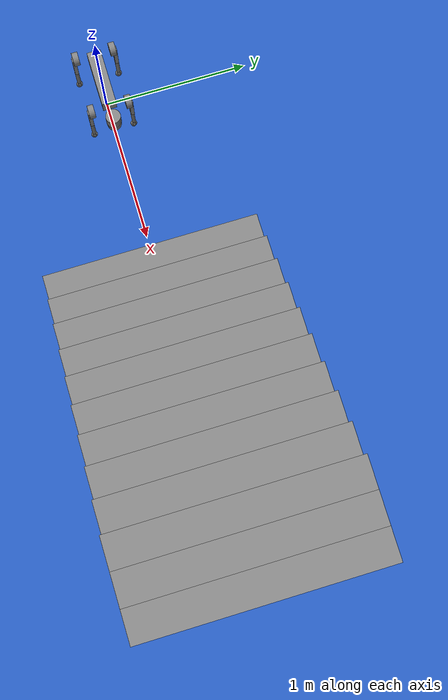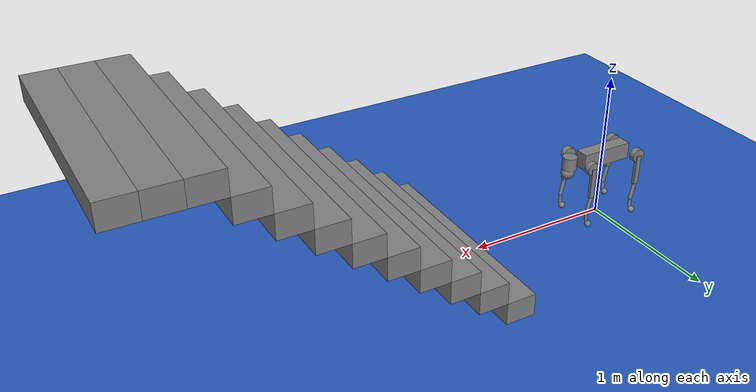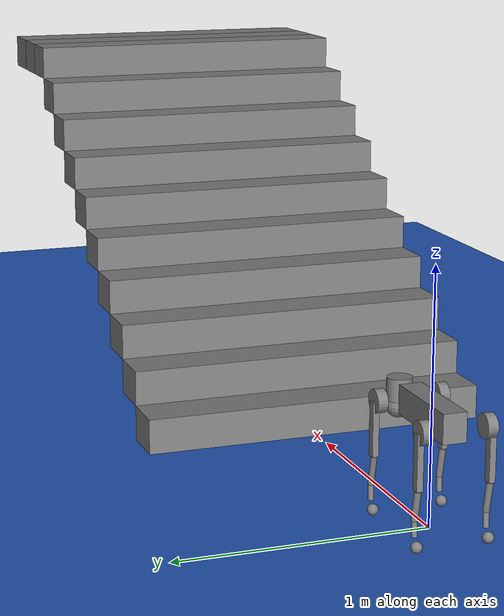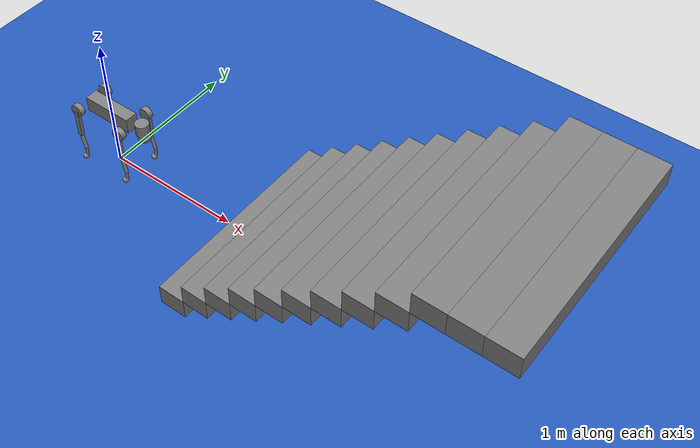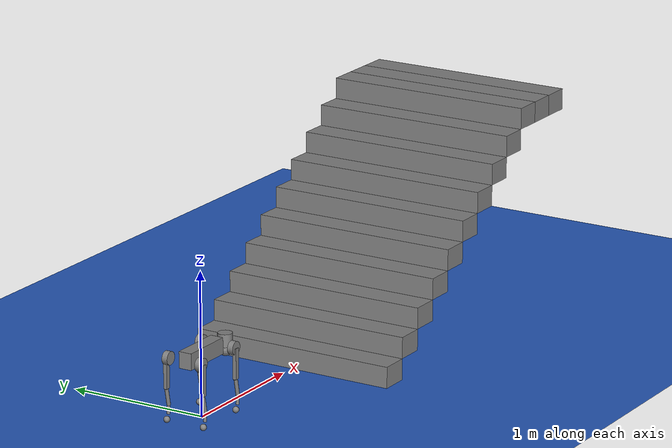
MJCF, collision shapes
<mujoco model="Go2 stairs scene">
  <include file="../common.xml"/>

  <size memory="1M"/>
  <statistic center="1.7 0 0.8" extent="2.5"/>

  <visual>
    <headlight diffuse="0.6 0.6 0.6" ambient="0.3 0.3 0.3" specular="0 0 0"/>
    <global azimuth="-90" elevation="-20" offheight="1024" offwidth="1024"/>
  </visual>

  <worldbody>
    <light pos="0 0 2" dir="0 0 -1" directional="true" castshadow="false"/>
    <geom name="floor" type="plane" size="0 0 0.1" pos="0 0 -0.01"
          material="blue_grid" friction="0.8 0.005 0.0001"/>
    <geom name="step_01" pos="1.2 0 0.075" type="box" size="0.1 0.75 0.075"/>
    <geom name="step_02" pos="1.4 0 0.225" type="box" size="0.1 0.75 0.075"/>
    <geom name="step_03" pos="1.6 0 0.375" type="box" size="0.1 0.75 0.075"/>
    <geom name="step_04" pos="1.8 0 0.525" type="box" size="0.1 0.75 0.075"/>
    <geom name="step_05" pos="2.0 0 0.675" type="box" size="0.1 0.75 0.075"/>
    <geom name="step_06" pos="2.2 0 0.825" type="box" size="0.1 0.75 0.075"/>
    <geom name="step_07" pos="2.4 0 0.975" type="box" size="0.1 0.75 0.075"/>
    <geom name="step_08" pos="2.6 0 1.125" type="box" size="0.1 0.75 0.075"/>
    <geom name="step_09" pos="2.8 0 1.275" type="box" size="0.1 0.75 0.075"/>
    <geom name="step_10" pos="3.0 0 1.425" type="box" size="0.1 0.75 0.075"/>
    <geom name="landing_1" pos="3.2 0 1.425" type="box" size="0.1 0.75 0.075"/>
    <geom name="landing_2" pos="3.4 0 1.425" type="box" size="0.1 0.75 0.075"/>
  </worldbody>

  <include file="go2.xml"/>

  <keyframe>
    <key name="home"
         qpos="0 0 0.27 1 0 0 0
               0 0.9 -1.8  0 0.9 -1.8
               0 0.9 -1.8  0 0.9 -1.8"
         ctrl="0 0.9 -1.8  0 0.9 -1.8
               0 0.9 -1.8  0 0.9 -1.8"/>
    <key name="sit"
         qpos="0 0 0.08 1 0 0 0
               0.073 1.34 -2.83  0.073 1.34 -2.83
               0.073 1.34 -2.83  0.073 1.34 -2.83"
         ctrl="0.073 1.34 -2.83  0.073 1.34 -2.83
               0.073 1.34 -2.83  0.073 1.34 -2.83"/>
  </keyframe>
</mujoco>

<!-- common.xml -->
<mujoco>
  <visual>
    <headlight ambient=".4 .4 .4" diffuse=".8 .8 .8" specular=".1 .1 .1"/>
    <map znear=".01"/>
    <quality shadowsize="2048"/>
    <global elevation="-15"/>
  </visual>
  <asset>
    <texture name="blue_grid" type="2d" builtin="checker"
      rgb1=".02 .14 .44" rgb2=".27 .55 1" width="300" height="300"
      mark="edge" markrgb="1 1 1"/>
    <material name="blue_grid" texture="blue_grid" texrepeat="1 1"
      texuniform="true" reflectance=".2"/>
    <texture name="grey_grid" type="2d" builtin="checker"
      rgb1=".26 .26 .26" rgb2=".6 .6 .6" width="300" height="300"
      mark="edge" markrgb="1 1 1"/>
    <material name="grey_grid" texture="grey_grid" texrepeat="1 1"
      texuniform="true" reflectance=".2"/>
    <texture name="skybox" type="skybox" builtin="gradient"
      rgb1=".66 .79 1" rgb2=".9 .91 .93" width="800" height="800"/>
  </asset>
</mujoco>

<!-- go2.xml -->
<mujoco model="go2">
  <compiler angle="radian" meshdir="assets" autolimits="true" />

  <option timestep="0.01" integrator="Euler" cone="elliptic" impratio="100" />

  <default>
    <default class="go2">
      <geom friction="0.6" margin="0.001" condim="1"/>
      <joint axis="0 1 0" damping="2" armature="0.01" frictionloss="0.2"/>
      <!-- MPPI commands joint positions.  Model the Unitree low-level PD loop
           so ctrl has the same meaning in rollout and in the simulator. -->
      <general forcerange="-23.7 23.7" biastype="affine"
        gainprm="50 0 0 0 0 0 0 0 0 0"
        biasprm="0 -50 -3 0 0 0 0 0 0 0"/>
      <default class="abduction">
        <joint axis="1 0 0" damping="1" range="-1.0472 1.0472"/>
        <general ctrlrange="-1.0472 1.0472"/>
      </default>
      <default class="hip">
        <default class="front_hip">
          <joint range="-1.5708 3.4907"/>
          <general ctrlrange="-1.5708 3.4907"/>
        </default>
        <default class="back_hip">
          <joint range="-0.5236 4.5379"/>
          <general ctrlrange="-0.5236 4.5379"/>
        </default>
      </default>
      <default class="knee">
        <!-- The bundled legacy gait bank reaches -2.83 rad while sitting. -->
        <joint range="-2.83 -0.83776"/>
        <general ctrlrange="-2.83 -0.83776" forcerange="-45.43 45.43"/>
      </default>
      <default class="visual">
        <geom type="mesh" contype="0" conaffinity="0" group="2"/>
      </default>
      <default class="collision">
        <geom group="3"/>
        <default class="foot">
          <geom size="0.022" pos="-0.002 0 -0.213" priority="1" condim="6"
            friction="0.8 0.02 0.01"/>
        </default>
      </default>
    </default>
  </default>

  <asset>
    <material name="metal" rgba=".9 .95 .95 1" />
    <material name="black" rgba="0 0 0 1" />
    <material name="white" rgba="1 1 1 1" />
    <material name="gray" rgba="0.671705 0.692426 0.774270 1" />

    <mesh file="base_0.obj" />
    <mesh file="base_1.obj" />
    <mesh file="base_2.obj" />
    <mesh file="base_3.obj" />
    <mesh file="base_4.obj" />
    <mesh file="hip_0.obj" />
    <mesh file="hip_1.obj" />
    <mesh file="thigh_0.obj" />
    <mesh file="thigh_1.obj" />
    <mesh file="thigh_mirror_0.obj" />
    <mesh file="thigh_mirror_1.obj" />
    <mesh file="calf_0.obj" />
    <mesh file="calf_1.obj" />
    <mesh file="calf_mirror_0.obj" />
    <mesh file="calf_mirror_1.obj" />
    <mesh file="foot.obj" />
  </asset>

  <worldbody>
    <body name="base_link" pos="0 0 0.445" childclass="go2">
      <inertial pos="0.021112 0 -0.005366" quat="-0.000543471 0.713435 -0.00173769 0.700719"
        mass="6.921"
        diaginertia="0.107027 0.0980771 0.0244531" />
      <freejoint />
      <geom mesh="base_0" material="black" class="visual" />
      <geom mesh="base_1" material="black" class="visual" />
      <geom mesh="base_2" material="black" class="visual" />
      <geom mesh="base_3" material="white" class="visual" />
      <geom mesh="base_4" material="gray" class="visual" />
      <geom size="0.1881 0.04675 0.057" type="box" class="collision" />
      <geom size="0.05 0.045" pos="0.285 0 0.01" type="cylinder" class="collision" />
      <geom size="0.047" pos="0.293 0 -0.06" class="collision" />
      <site name="imu" pos="-0.02557 0 0.04232" />
      <body name="FL_hip" pos="0.1934 0.0465 0">
        <inertial pos="-0.0054 0.00194 -0.000105" quat="0.497014 0.499245 0.505462 0.498237"
          mass="0.678"
          diaginertia="0.00088403 0.000596003 0.000479967" />
        <joint name="FL_hip_joint" class="abduction" />
        <geom mesh="hip_0" material="metal" class="visual" />
        <geom mesh="hip_1" material="gray" class="visual" />
        <geom size="0.046 0.02" pos="0 0.08 0" quat="1 1 0 0" type="cylinder" class="collision" />
        <body name="FL_thigh" pos="0 0.0955 0">
          <inertial pos="-0.00374 -0.0223 -0.0327" quat="0.829533 0.0847635 -0.0200632 0.551623"
            mass="1.152"
            diaginertia="0.00594973 0.00584149 0.000878787" />
          <joint name="FL_thigh_joint" class="front_hip" />
          <geom mesh="thigh_0" material="metal" class="visual" />
          <geom mesh="thigh_1" material="gray" class="visual" />
          <geom size="0.1065 0.01225 0.017" pos="0 0 -0.1065" quat="0.707107 0 0.707107 0"
            type="box" class="collision" />
          <body name="FL_calf" pos="0 0 -0.213">
            <inertial pos="0.00629595 -0.000622121 -0.141417"
              quat="0.710672 0.00154099 -0.00450087 0.703508"
              mass="0.241352" diaginertia="0.0014901 0.00146356 5.31397e-05" />
            <joint name="FL_calf_joint" class="knee" />
            <geom mesh="calf_0" material="gray" class="visual" />
            <geom mesh="calf_1" material="black" class="visual" />
            <geom size="0.012 0.06" pos="0.008 0 -0.06" quat="0.994493 0 -0.104807 0"
              type="cylinder" class="collision" />
            <geom size="0.011 0.0325" pos="0.02 0 -0.148" quat="0.999688 0 0.0249974 0"
              type="cylinder" class="collision" />
            <geom pos="0 0 -0.213" mesh="foot" class="visual" material="black" />
            <geom name="FL" class="foot" />
            <body name="FL_foot" pos="0 0 -0.213" />
          </body>
        </body>
      </body>
      <body name="FR_hip" pos="0.1934 -0.0465 0">
        <inertial pos="-0.0054 -0.00194 -0.000105" quat="0.498237 0.505462 0.499245 0.497014"
          mass="0.678"
          diaginertia="0.00088403 0.000596003 0.000479967" />
        <joint name="FR_hip_joint" class="abduction" />
        <geom mesh="hip_0" material="metal" class="visual" quat="4.63268e-05 1 0 0" />
        <geom mesh="hip_1" material="gray" class="visual" quat="4.63268e-05 1 0 0" />
        <geom size="0.046 0.02" pos="0 -0.08 0" quat="0.707107 0.707107 0 0" type="cylinder"
          class="collision" />
        <body name="FR_thigh" pos="0 -0.0955 0">
          <inertial pos="-0.00374 0.0223 -0.0327" quat="0.551623 -0.0200632 0.0847635 0.829533"
            mass="1.152"
            diaginertia="0.00594973 0.00584149 0.000878787" />
          <joint name="FR_thigh_joint" class="front_hip" />
          <geom mesh="thigh_mirror_0" material="metal" class="visual" />
          <geom mesh="thigh_mirror_1" material="gray" class="visual" />
          <geom size="0.1065 0.01225 0.017" pos="0 0 -0.1065" quat="0.707107 0 0.707107 0"
            type="box" class="collision" />
          <body name="FR_calf" pos="0 0 -0.213">
            <inertial pos="0.00629595 0.000622121 -0.141417"
              quat="0.703508 -0.00450087 0.00154099 0.710672"
              mass="0.241352" diaginertia="0.0014901 0.00146356 5.31397e-05" />
            <joint name="FR_calf_joint" class="knee" />
            <geom mesh="calf_mirror_0" material="gray" class="visual" />
            <geom mesh="calf_mirror_1" material="black" class="visual" />
            <geom size="0.013 0.06" pos="0.01 0 -0.06" quat="0.995004 0 -0.0998334 0"
              type="cylinder" class="collision" />
            <geom size="0.011 0.0325" pos="0.02 0 -0.148" quat="0.999688 0 0.0249974 0"
              type="cylinder" class="collision" />
            <geom pos="0 0 -0.213" mesh="foot" class="visual" material="black" />
            <geom name="FR" class="foot" />
            <body name="FR_foot" pos="0 0 -0.213" />
          </body>
        </body>
      </body>
      <body name="RL_hip" pos="-0.1934 0.0465 0">
        <inertial pos="0.0054 0.00194 -0.000105" quat="0.505462 0.498237 0.497014 0.499245"
          mass="0.678"
          diaginertia="0.00088403 0.000596003 0.000479967" />
        <joint name="RL_hip_joint" class="abduction" />
        <geom mesh="hip_0" material="metal" class="visual" quat="4.63268e-05 0 1 0" />
        <geom mesh="hip_1" material="gray" class="visual" quat="4.63268e-05 0 1 0" />
        <geom size="0.046 0.02" pos="0 0.08 0" quat="0.707107 0.707107 0 0" type="cylinder"
          class="collision" />
        <body name="RL_thigh" pos="0 0.0955 0">
          <inertial pos="-0.00374 -0.0223 -0.0327" quat="0.829533 0.0847635 -0.0200632 0.551623"
            mass="1.152"
            diaginertia="0.00594973 0.00584149 0.000878787" />
          <joint name="RL_thigh_joint" class="back_hip" />
          <geom mesh="thigh_0" material="metal" class="visual" />
          <geom mesh="thigh_1" material="gray" class="visual" />
          <geom size="0.1065 0.01225 0.017" pos="0 0 -0.1065" quat="0.707107 0 0.707107 0"
            type="box" class="collision" />
          <body name="RL_calf" pos="0 0 -0.213">
            <inertial pos="0.00629595 -0.000622121 -0.141417"
              quat="0.710672 0.00154099 -0.00450087 0.703508"
              mass="0.241352" diaginertia="0.0014901 0.00146356 5.31397e-05" />
            <joint name="RL_calf_joint" class="knee" />
            <geom mesh="calf_0" material="gray" class="visual" />
            <geom mesh="calf_1" material="black" class="visual" />
            <geom size="0.013 0.06" pos="0.01 0 -0.06" quat="0.995004 0 -0.0998334 0"
              type="cylinder" class="collision" />
            <geom size="0.011 0.0325" pos="0.02 0 -0.148" quat="0.999688 0 0.0249974 0"
              type="cylinder" class="collision" />
            <geom pos="0 0 -0.213" mesh="foot" class="visual" material="black" />
            <geom name="RL" class="foot" />
            <body name="RL_foot" pos="0 0 -0.213" />
          </body>
        </body>
      </body>
      <body name="RR_hip" pos="-0.1934 -0.0465 0">
        <inertial pos="0.0054 -0.00194 -0.000105" quat="0.499245 0.497014 0.498237 0.505462"
          mass="0.678"
          diaginertia="0.00088403 0.000596003 0.000479967" />
        <joint name="RR_hip_joint" class="abduction" />
        <geom mesh="hip_0" material="metal" class="visual"
          quat="2.14617e-09 4.63268e-05 4.63268e-05 -1" />
        <geom mesh="hip_1" material="gray" class="visual"
          quat="2.14617e-09 4.63268e-05 4.63268e-05 -1" />
        <geom size="0.046 0.02" pos="0 -0.08 0" quat="0.707107 0.707107 0 0" type="cylinder"
          class="collision" />
        <body name="RR_thigh" pos="0 -0.0955 0">
          <inertial pos="-0.00374 0.0223 -0.0327" quat="0.551623 -0.0200632 0.0847635 0.829533"
            mass="1.152"
            diaginertia="0.00594973 0.00584149 0.000878787" />
          <joint name="RR_thigh_joint" class="back_hip" />
          <geom mesh="thigh_mirror_0" material="metal" class="visual" />
          <geom mesh="thigh_mirror_1" material="gray" class="visual" />
          <geom size="0.1065 0.01225 0.017" pos="0 0 -0.1065" quat="0.707107 0 0.707107 0"
            type="box" class="collision" />
          <body name="RR_calf" pos="0 0 -0.213">
            <inertial pos="0.00629595 0.000622121 -0.141417"
              quat="0.703508 -0.00450087 0.00154099 0.710672"
              mass="0.241352" diaginertia="0.0014901 0.00146356 5.31397e-05" />
            <joint name="RR_calf_joint" class="knee" />
            <geom mesh="calf_mirror_0" material="gray" class="visual" />
            <geom mesh="calf_mirror_1" material="black" class="visual" />
            <geom size="0.013 0.06" pos="0.01 0 -0.06" quat="0.995004 0 -0.0998334 0"
              type="cylinder" class="collision" />
            <geom size="0.011 0.0325" pos="0.02 0 -0.148" quat="0.999688 0 0.0249974 0"
              type="cylinder" class="collision" />
            <geom pos="0 0 -0.213" mesh="foot" class="visual" material="black" />
            <geom name="RR" class="foot" />
            <body name="RR_foot" pos="0 0 -0.213" />
          </body>
        </body>
      </body>
    </body>
  </worldbody>

  <actuator>
    <general class="abduction" name="FR_hip" joint="FR_hip_joint" />
    <general class="front_hip" name="FR_thigh" joint="FR_thigh_joint" />
    <general class="knee" name="FR_calf" joint="FR_calf_joint" />
    <general class="abduction" name="FL_hip" joint="FL_hip_joint" />
    <general class="front_hip" name="FL_thigh" joint="FL_thigh_joint" />
    <general class="knee" name="FL_calf" joint="FL_calf_joint" />
    <general class="abduction" name="RR_hip" joint="RR_hip_joint" />
    <general class="back_hip" name="RR_thigh" joint="RR_thigh_joint" />
    <general class="knee" name="RR_calf" joint="RR_calf_joint" />
    <general class="abduction" name="RL_hip" joint="RL_hip_joint" />
    <general class="back_hip" name="RL_thigh" joint="RL_thigh_joint" />
    <general class="knee" name="RL_calf" joint="RL_calf_joint" />
  </actuator>

  <sensor>
    <jointpos name="FR_hip_pos" joint="FR_hip_joint" />
    <jointpos name="FR_thigh_pos" joint="FR_thigh_joint" />
    <jointpos name="FR_calf_pos" joint="FR_calf_joint" />
    <jointpos name="FL_hip_pos" joint="FL_hip_joint" />
    <jointpos name="FL_thigh_pos" joint="FL_thigh_joint" />
    <jointpos name="FL_calf_pos" joint="FL_calf_joint" />
    <jointpos name="RR_hip_pos" joint="RR_hip_joint" />
    <jointpos name="RR_thigh_pos" joint="RR_thigh_joint" />
    <jointpos name="RR_calf_pos" joint="RR_calf_joint" />
    <jointpos name="RL_hip_pos" joint="RL_hip_joint" />
    <jointpos name="RL_thigh_pos" joint="RL_thigh_joint" />
    <jointpos name="RL_calf_pos" joint="RL_calf_joint" />

    <jointvel name="FR_hip_vel" joint="FR_hip_joint" />
    <jointvel name="FR_thigh_vel" joint="FR_thigh_joint" />
    <jointvel name="FR_calf_vel" joint="FR_calf_joint" />
    <jointvel name="FL_hip_vel" joint="FL_hip_joint" />
    <jointvel name="FL_thigh_vel" joint="FL_thigh_joint" />
    <jointvel name="FL_calf_vel" joint="FL_calf_joint" />
    <jointvel name="RR_hip_vel" joint="RR_hip_joint" />
    <jointvel name="RR_thigh_vel" joint="RR_thigh_joint" />
    <jointvel name="RR_calf_vel" joint="RR_calf_joint" />
    <jointvel name="RL_hip_vel" joint="RL_hip_joint" />
    <jointvel name="RL_thigh_vel" joint="RL_thigh_joint" />
    <jointvel name="RL_calf_vel" joint="RL_calf_joint" />

    <jointactuatorfrc name="FR_hip_torque" joint="FR_hip_joint" noise="0.01" />
    <jointactuatorfrc name="FR_thigh_torque" joint="FR_thigh_joint" noise="0.01" />
    <jointactuatorfrc name="FR_calf_torque" joint="FR_calf_joint" noise="0.01" />
    <jointactuatorfrc name="FL_hip_torque" joint="FL_hip_joint" noise="0.01" />
    <jointactuatorfrc name="FL_thigh_torque" joint="FL_thigh_joint" noise="0.01" />
    <jointactuatorfrc name="FL_calf_torque" joint="FL_calf_joint" noise="0.01" />
    <jointactuatorfrc name="RR_hip_torque" joint="RR_hip_joint" noise="0.01" />
    <jointactuatorfrc name="RR_thigh_torque" joint="RR_thigh_joint" noise="0.01" />
    <jointactuatorfrc name="RR_calf_torque" joint="RR_calf_joint" noise="0.01" />
    <jointactuatorfrc name="RL_hip_torque" joint="RL_hip_joint" noise="0.01" />
    <jointactuatorfrc name="RL_thigh_torque" joint="RL_thigh_joint" noise="0.01" />
    <jointactuatorfrc name="RL_calf_torque" joint="RL_calf_joint" noise="0.01" />

    <framequat name="imu_quat" objtype="site" objname="imu" />
    <gyro name="imu_gyro" site="imu" />
    <accelerometer name="imu_acc" site="imu" />

    <framepos name="frame_pos" objtype="site" objname="imu" />
    <framelinvel name="frame_vel" objtype="site" objname="imu" />
  </sensor>

</mujoco>
